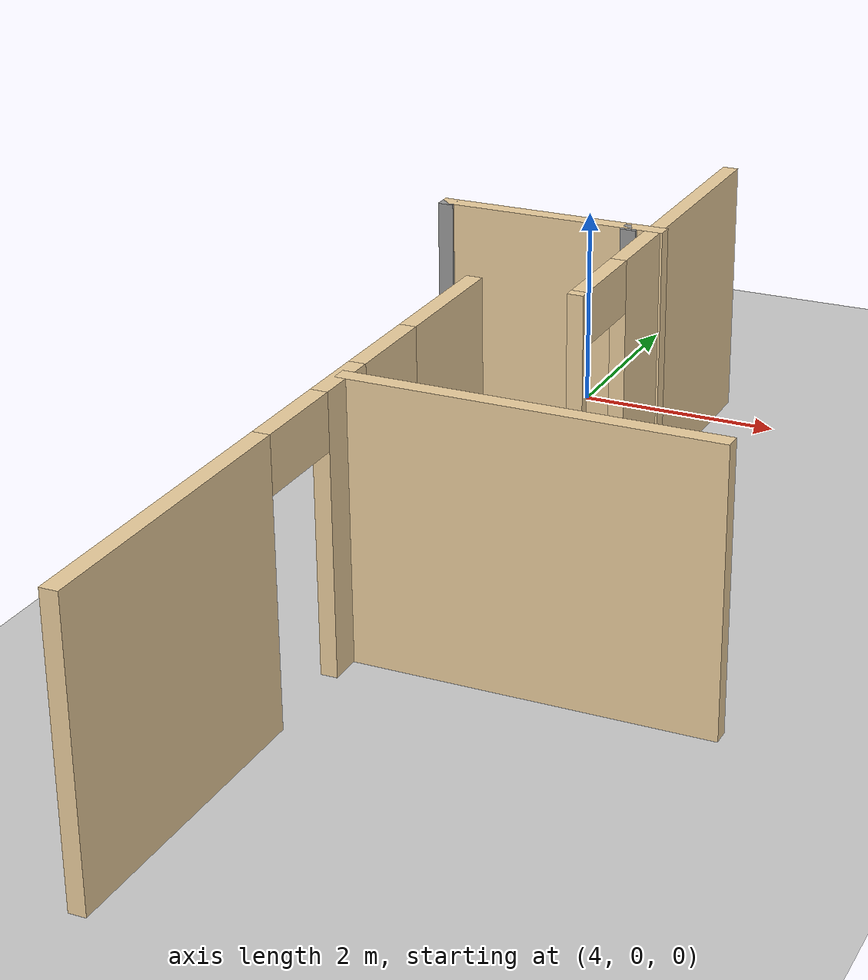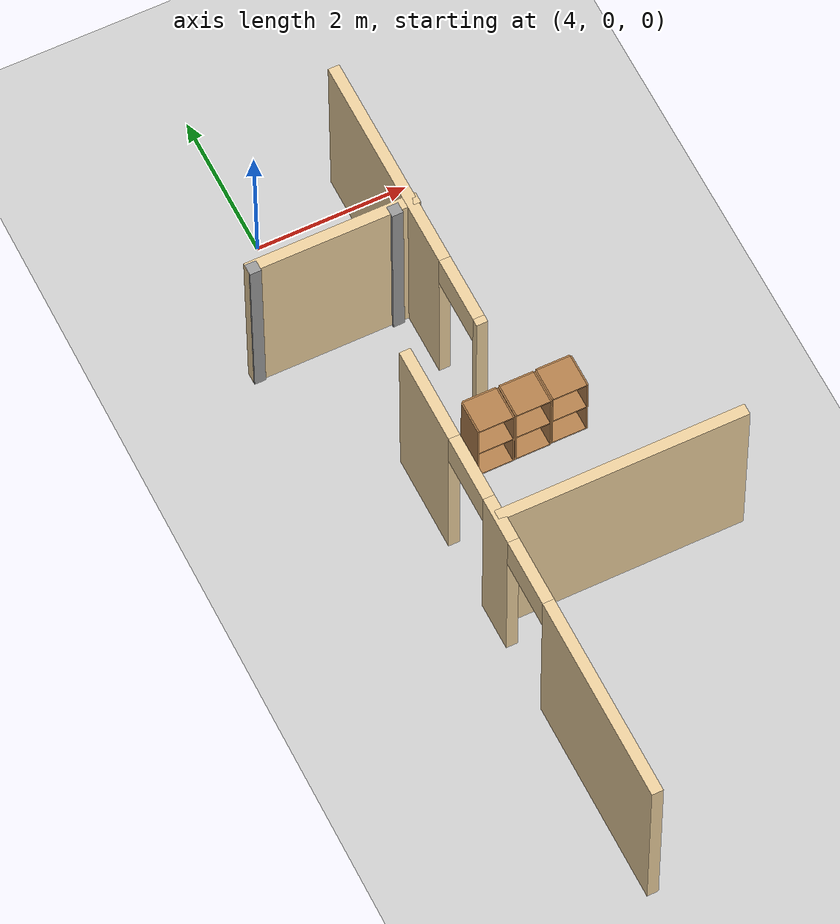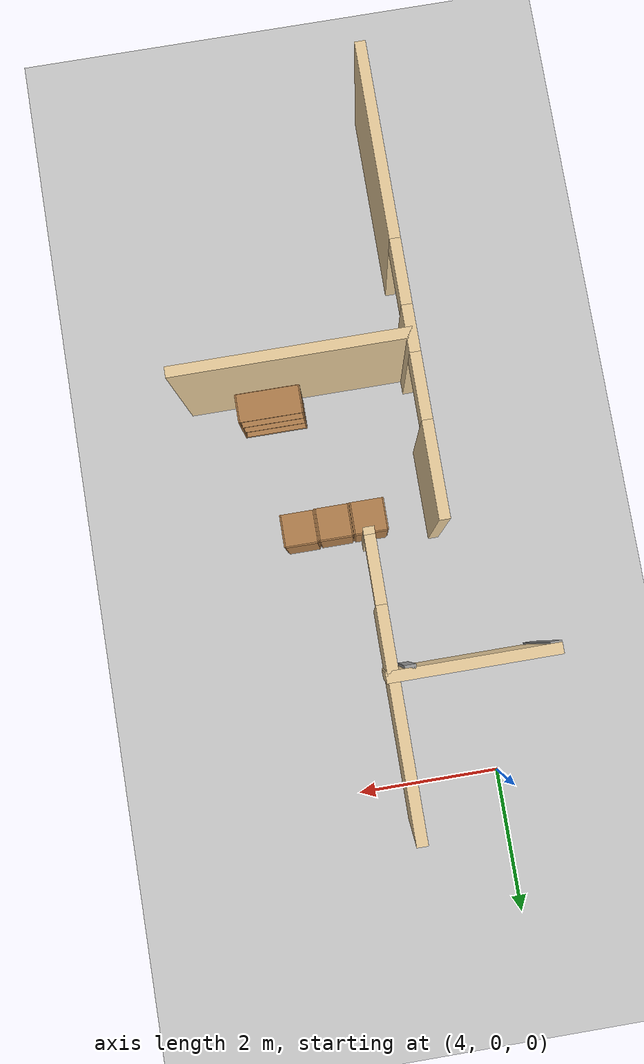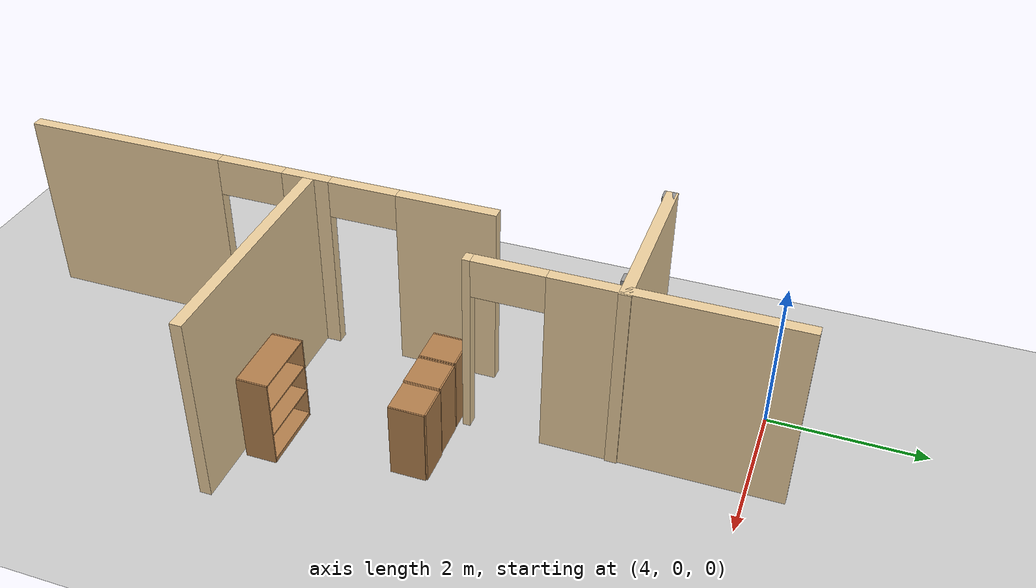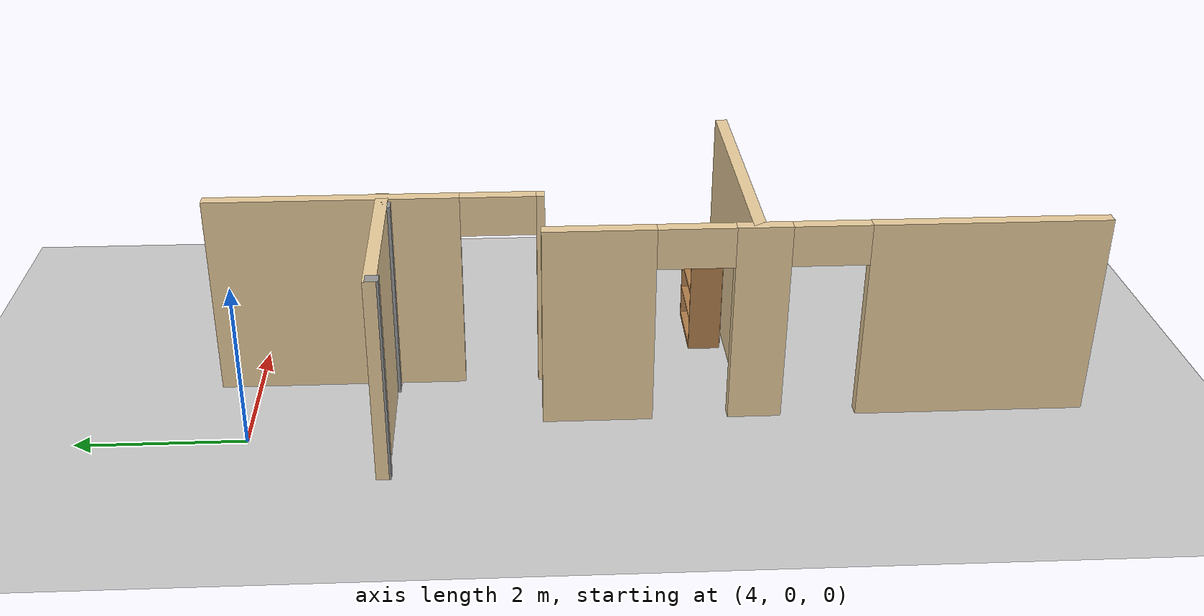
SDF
<sdf version="1.6">
 <world name="default">
  <model name="ground_plane">
   <static>1</static>
   <link name="link">
    <collision name="collision">
     <geometry><plane><normal>0 0 1</normal><size>100 100</size></plane></geometry>
     <surface>
      <contact><collide_bitmask>65535</collide_bitmask></contact>
      <friction><ode><mu>100</mu><mu2>50</mu2></ode></friction>
     </surface>
    </collision>
    <visual name="visual">
     <cast_shadows>0</cast_shadows>
     <geometry><plane><normal>0 0 1</normal><size>100 100</size></plane></geometry>
     <material>
      <script><uri>file://media/materials/scripts/gazebo.material</uri><name>Gazebo/Grey</name></script>
     </material>
    </visual>
   </link>
  </model>
  <model name="cabinet">
   <static>1</static>
   <link name="cabinet_bottom_plate">
    <inertial>
     <pose>0 0 -1 0 -0 0</pose>
     <inertia><ixx>2.05</ixx><ixy>0</ixy><ixz>0</ixz><iyy>2.05</iyy><iyz>0</iyz><izz>2.05</izz></inertia>
     <mass>25</mass>
    </inertial>
    <collision name="cabinet_bottom_plate_geom">
     <pose>0 0 0.01 0 -0 0</pose>
     <geometry><box><size>0.45 0.45 0.02</size></box></geometry>
    </collision>
    <visual name="cabinet_bottom_plate_geom_visual">
     <pose>0 0 0.01 0 -0 0</pose>
     <geometry><box><size>0.45 0.45 0.02</size></box></geometry>
     <material>
      <script><uri>file://media/materials/scripts/gazebo.material</uri><name>Gazebo/Wood</name></script>
     </material>
    </visual>
    <collision name="cabinet_bottom_plate_geom_cabinet_back_plate">
     <pose>0.235 0 0.51 0 -0 0</pose>
     <geometry><box><size>0.02 0.45 1.02</size></box></geometry>
    </collision>
    <visual name="cabinet_bottom_plate_geom_cabinet_back_plate_visual">
     <pose>0.235 0 0.51 0 -0 0</pose>
     <geometry><box><size>0.02 0.45 1.02</size></box></geometry>
     <material>
      <script><uri>file://media/materials/scripts/gazebo.material</uri><name>Gazebo/Wood</name></script>
     </material>
    </visual>
    <collision name="cabinet_bottom_plate_geom_cabinet_left_plate">
     <pose>0 0.235 0.51 0 -0 0</pose>
     <geometry><box><size>0.45 0.02 1.02</size></box></geometry>
    </collision>
    <visual name="cabinet_bottom_plate_geom_cabinet_left_plate_visual">
     <pose>0 0.235 0.51 0 -0 0</pose>
     <geometry><box><size>0.45 0.02 1.02</size></box></geometry>
     <material>
      <script><uri>file://media/materials/scripts/gazebo.material</uri><name>Gazebo/Wood</name></script>
     </material>
    </visual>
    <collision name="cabinet_bottom_plate_geom_cabinet_middle_plate">
     <pose>0 0 0.51 0 -0 0</pose>
     <geometry><box><size>0.45 0.45 0.02</size></box></geometry>
    </collision>
    <visual name="cabinet_bottom_plate_geom_cabinet_middle_plate_visual">
     <pose>0 0 0.51 0 -0 0</pose>
     <geometry><box><size>0.45 0.45 0.02</size></box></geometry>
     <material>
      <script><uri>file://media/materials/scripts/gazebo.material</uri><name>Gazebo/Wood</name></script>
     </material>
    </visual>
    <collision name="cabinet_bottom_plate_geom_cabinet_right_plate">
     <pose>0 -0.235 0.51 0 -0 0</pose>
     <geometry><box><size>0.45 0.02 1.02</size></box></geometry>
    </collision>
    <visual name="cabinet_bottom_plate_geom_cabinet_right_plate_visual">
     <pose>0 -0.235 0.51 0 -0 0</pose>
     <geometry><box><size>0.45 0.02 1.02</size></box></geometry>
     <material>
      <script><uri>file://media/materials/scripts/gazebo.material</uri><name>Gazebo/Wood</name></script>
     </material>
    </visual>
    <collision name="cabinet_bottom_plate_geom_cabinet_top_plate">
     <pose>0 0 1.01 0 -0 0</pose>
     <geometry><box><size>0.45 0.45 0.02</size></box></geometry>
    </collision>
    <visual name="cabinet_bottom_plate_geom_cabinet_top_plate_visual">
     <pose>0 0 1.01 0 -0 0</pose>
     <geometry><box><size>0.45 0.45 0.02</size></box></geometry>
     <material>
      <script><uri>file://media/materials/scripts/gazebo.material</uri><name>Gazebo/Wood</name></script>
     </material>
    </visual>
   </link>
   <pose>5.72812 -3.81623 0 0 -0 1.57</pose>
  </model>
  <model name="cabinet_clone">
   <static>1</static>
   <link name="cabinet_bottom_plate">
    <inertial>
     <pose>0 0 -1 0 -0 0</pose>
     <inertia><ixx>2.05</ixx><ixy>0</ixy><ixz>0</ixz><iyy>2.05</iyy><iyz>0</iyz><izz>2.05</izz></inertia>
     <mass>25</mass>
    </inertial>
    <collision name="cabinet_bottom_plate_geom">
     <pose>0 0 0.01 0 -0 0</pose>
     <geometry><box><size>0.45 0.45 0.02</size></box></geometry>
    </collision>
    <visual name="cabinet_bottom_plate_geom_visual">
     <pose>0 0 0.01 0 -0 0</pose>
     <geometry><box><size>0.45 0.45 0.02</size></box></geometry>
     <material>
      <script><uri>file://media/materials/scripts/gazebo.material</uri><name>Gazebo/Wood</name></script>
     </material>
    </visual>
    <collision name="cabinet_bottom_plate_geom_cabinet_back_plate">
     <pose>0.235 0 0.51 0 -0 0</pose>
     <geometry><box><size>0.02 0.45 1.02</size></box></geometry>
    </collision>
    <visual name="cabinet_bottom_plate_geom_cabinet_back_plate_visual">
     <pose>0.235 0 0.51 0 -0 0</pose>
     <geometry><box><size>0.02 0.45 1.02</size></box></geometry>
     <material>
      <script><uri>file://media/materials/scripts/gazebo.material</uri><name>Gazebo/Wood</name></script>
     </material>
    </visual>
    <collision name="cabinet_bottom_plate_geom_cabinet_left_plate">
     <pose>0 0.235 0.51 0 -0 0</pose>
     <geometry><box><size>0.45 0.02 1.02</size></box></geometry>
    </collision>
    <visual name="cabinet_bottom_plate_geom_cabinet_left_plate_visual">
     <pose>0 0.235 0.51 0 -0 0</pose>
     <geometry><box><size>0.45 0.02 1.02</size></box></geometry>
     <material>
      <script><uri>file://media/materials/scripts/gazebo.material</uri><name>Gazebo/Wood</name></script>
     </material>
    </visual>
    <collision name="cabinet_bottom_plate_geom_cabinet_middle_plate">
     <pose>0 0 0.51 0 -0 0</pose>
     <geometry><box><size>0.45 0.45 0.02</size></box></geometry>
    </collision>
    <visual name="cabinet_bottom_plate_geom_cabinet_middle_plate_visual">
     <pose>0 0 0.51 0 -0 0</pose>
     <geometry><box><size>0.45 0.45 0.02</size></box></geometry>
     <material>
      <script><uri>file://media/materials/scripts/gazebo.material</uri><name>Gazebo/Wood</name></script>
     </material>
    </visual>
    <collision name="cabinet_bottom_plate_geom_cabinet_right_plate">
     <pose>0 -0.235 0.51 0 -0 0</pose>
     <geometry><box><size>0.45 0.02 1.02</size></box></geometry>
    </collision>
    <visual name="cabinet_bottom_plate_geom_cabinet_right_plate_visual">
     <pose>0 -0.235 0.51 0 -0 0</pose>
     <geometry><box><size>0.45 0.02 1.02</size></box></geometry>
     <material>
      <script><uri>file://media/materials/scripts/gazebo.material</uri><name>Gazebo/Wood</name></script>
     </material>
    </visual>
    <collision name="cabinet_bottom_plate_geom_cabinet_top_plate">
     <pose>0 0 1.01 0 -0 0</pose>
     <geometry><box><size>0.45 0.45 0.02</size></box></geometry>
    </collision>
    <visual name="cabinet_bottom_plate_geom_cabinet_top_plate_visual">
     <pose>0 0 1.01 0 -0 0</pose>
     <geometry><box><size>0.45 0.45 0.02</size></box></geometry>
     <material>
      <script><uri>file://media/materials/scripts/gazebo.material</uri><name>Gazebo/Wood</name></script>
     </material>
    </visual>
   </link>
   <pose>6.21795 -3.80591 0 0 -0 1.57</pose>
  </model>
  <model name="cabinet_clone_0">
   <static>1</static>
   <link name="cabinet_bottom_plate">
    <inertial>
     <pose>0 0 -1 0 -0 0</pose>
     <inertia><ixx>2.05</ixx><ixy>0</ixy><ixz>0</ixz><iyy>2.05</iyy><iyz>0</iyz><izz>2.05</izz></inertia>
     <mass>25</mass>
    </inertial>
    <collision name="cabinet_bottom_plate_geom">
     <pose>0 0 0.01 0 -0 0</pose>
     <geometry><box><size>0.45 0.45 0.02</size></box></geometry>
    </collision>
    <visual name="cabinet_bottom_plate_geom_visual">
     <pose>0 0 0.01 0 -0 0</pose>
     <geometry><box><size>0.45 0.45 0.02</size></box></geometry>
     <material>
      <script><uri>file://media/materials/scripts/gazebo.material</uri><name>Gazebo/Wood</name></script>
     </material>
    </visual>
    <collision name="cabinet_bottom_plate_geom_cabinet_back_plate">
     <pose>0.235 0 0.51 0 -0 0</pose>
     <geometry><box><size>0.02 0.45 1.02</size></box></geometry>
    </collision>
    <visual name="cabinet_bottom_plate_geom_cabinet_back_plate_visual">
     <pose>0.235 0 0.51 0 -0 0</pose>
     <geometry><box><size>0.02 0.45 1.02</size></box></geometry>
     <material>
      <script><uri>file://media/materials/scripts/gazebo.material</uri><name>Gazebo/Wood</name></script>
     </material>
    </visual>
    <collision name="cabinet_bottom_plate_geom_cabinet_left_plate">
     <pose>0 0.235 0.51 0 -0 0</pose>
     <geometry><box><size>0.45 0.02 1.02</size></box></geometry>
    </collision>
    <visual name="cabinet_bottom_plate_geom_cabinet_left_plate_visual">
     <pose>0 0.235 0.51 0 -0 0</pose>
     <geometry><box><size>0.45 0.02 1.02</size></box></geometry>
     <material>
      <script><uri>file://media/materials/scripts/gazebo.material</uri><name>Gazebo/Wood</name></script>
     </material>
    </visual>
    <collision name="cabinet_bottom_plate_geom_cabinet_middle_plate">
     <pose>0 0 0.51 0 -0 0</pose>
     <geometry><box><size>0.45 0.45 0.02</size></box></geometry>
    </collision>
    <visual name="cabinet_bottom_plate_geom_cabinet_middle_plate_visual">
     <pose>0 0 0.51 0 -0 0</pose>
     <geometry><box><size>0.45 0.45 0.02</size></box></geometry>
     <material>
      <script><uri>file://media/materials/scripts/gazebo.material</uri><name>Gazebo/Wood</name></script>
     </material>
    </visual>
    <collision name="cabinet_bottom_plate_geom_cabinet_right_plate">
     <pose>0 -0.235 0.51 0 -0 0</pose>
     <geometry><box><size>0.45 0.02 1.02</size></box></geometry>
    </collision>
    <visual name="cabinet_bottom_plate_geom_cabinet_right_plate_visual">
     <pose>0 -0.235 0.51 0 -0 0</pose>
     <geometry><box><size>0.45 0.02 1.02</size></box></geometry>
     <material>
      <script><uri>file://media/materials/scripts/gazebo.material</uri><name>Gazebo/Wood</name></script>
     </material>
    </visual>
    <collision name="cabinet_bottom_plate_geom_cabinet_top_plate">
     <pose>0 0 1.01 0 -0 0</pose>
     <geometry><box><size>0.45 0.45 0.02</size></box></geometry>
    </collision>
    <visual name="cabinet_bottom_plate_geom_cabinet_top_plate_visual">
     <pose>0 0 1.01 0 -0 0</pose>
     <geometry><box><size>0.45 0.45 0.02</size></box></geometry>
     <material>
      <script><uri>file://media/materials/scripts/gazebo.material</uri><name>Gazebo/Wood</name></script>
     </material>
    </visual>
   </link>
   <pose>5.23276 -3.82024 0 0 -0 1.57</pose>
  </model>
  <model name="bookshelf">
   <static>1</static>
   <link name="link">
    <inertial><mass>1</mass></inertial>
    <collision name="back">
     <pose>0 0.005 0.6 0 -0 0</pose>
     <geometry><box><size>0.9 0.01 1.2</size></box></geometry>
    </collision>
    <visual name="visual1">
     <pose>0 0.005 0.6 0 -0 0</pose>
     <geometry><box><size>0.9 0.01 1.2</size></box></geometry>
     <material>
      <script><uri>file://media/materials/scripts/gazebo.material</uri><name>Gazebo/Wood</name></script>
     </material>
    </visual>
    <collision name="left_side">
     <pose>0.45 -0.195 0.6 0 -0 0</pose>
     <geometry><box><size>0.02 0.4 1.2</size></box></geometry>
    </collision>
    <visual name="visual2">
     <pose>0.45 -0.195 0.6 0 -0 0</pose>
     <geometry><box><size>0.02 0.4 1.2</size></box></geometry>
     <material>
      <script><uri>file://media/materials/scripts/gazebo.material</uri><name>Gazebo/Wood</name></script>
     </material>
    </visual>
    <collision name="right_side">
     <pose>-0.45 -0.195 0.6 0 -0 0</pose>
     <geometry><box><size>0.02 0.4 1.2</size></box></geometry>
    </collision>
    <visual name="visual3">
     <pose>-0.45 -0.195 0.6 0 -0 0</pose>
     <geometry><box><size>0.02 0.4 1.2</size></box></geometry>
     <material>
      <script><uri>file://media/materials/scripts/gazebo.material</uri><name>Gazebo/Wood</name></script>
     </material>
    </visual>
    <collision name="bottom">
     <pose>0 -0.195 0.03 0 -0 0</pose>
     <geometry><box><size>0.88 0.4 0.06</size></box></geometry>
    </collision>
    <visual name="visual4">
     <pose>0 -0.195 0.03 0 -0 0</pose>
     <geometry><box><size>0.88 0.4 0.06</size></box></geometry>
     <material>
      <script><uri>file://media/materials/scripts/gazebo.material</uri><name>Gazebo/Wood</name></script>
     </material>
    </visual>
    <collision name="top">
     <pose>0 -0.195 1.19 0 -0 0</pose>
     <geometry><box><size>0.88 0.4 0.02</size></box></geometry>
    </collision>
    <visual name="visual5">
     <pose>0 -0.195 1.19 0 -0 0</pose>
     <geometry><box><size>0.88 0.4 0.02</size></box></geometry>
     <material>
      <script><uri>file://media/materials/scripts/gazebo.material</uri><name>Gazebo/Wood</name></script>
     </material>
    </visual>
    <collision name="low_shelf">
     <pose>0 -0.195 0.43 0 -0 0</pose>
     <geometry><box><size>0.88 0.4 0.02</size></box></geometry>
    </collision>
    <visual name="visual6">
     <pose>0 -0.195 0.43 0 -0 0</pose>
     <geometry><box><size>0.88 0.4 0.02</size></box></geometry>
     <material>
      <script><uri>file://media/materials/scripts/gazebo.material</uri><name>Gazebo/Wood</name></script>
     </material>
    </visual>
    <collision name="high_shelf">
     <pose>0 -0.195 0.8 0 -0 0</pose>
     <geometry><box><size>0.88 0.4 0.02</size></box></geometry>
    </collision>
    <visual name="visual7">
     <pose>0 -0.195 0.8 0 -0 0</pose>
     <geometry><box><size>0.88 0.4 0.02</size></box></geometry>
     <material>
      <script><uri>file://media/materials/scripts/gazebo.material</uri><name>Gazebo/Wood</name></script>
     </material>
    </visual>
   </link>
   <pose>6.34803 -5.77495 0 0 -0 3.14</pose>
  </model>
  <model name="AutowayTower">
   <link name="Wall_20">
    <pose>1.52688 5.29695 0 0 -0 0</pose>
    <visual name="Wall_20_Visual_0">
     <pose>-0.499329 0 1.25 0 -0 0</pose>
     <geometry><box><size>3.00134 0.15 2.5</size></box></geometry>
     <material>
      <script><uri>file://media/materials/scripts/gazebo.material</uri><name>Gazebo/Grey</name></script>
      <ambient>0.921569 0.807843 0.615686 1</ambient>
      <shader type="pixel"/>
      <diffuse>0.7 0.7 0.7 1</diffuse>
      <specular>0.01 0.01 0.01 1</specular>
      <emissive>0 0 0 1</emissive>
     </material>
     <meta><layer>0</layer></meta>
    </visual>
    <visual name="Wall_20_Visual_1">
     <pose>1.95067 0 1.25 0 -0 0</pose>
     <geometry><box><size>0.098657 0.15 2.5</size></box></geometry>
     <material>
      <script><uri>file://media/materials/scripts/gazebo.material</uri><name>Gazebo/Grey</name></script>
      <ambient>0.921569 0.807843 0.615686 1</ambient>
      <shader type="pixel"/>
      <diffuse>0.7 0.7 0.7 1</diffuse>
      <specular>0.01 0.01 0.01 1</specular>
      <emissive>0 0 0 1</emissive>
     </material>
     <meta><layer>0</layer></meta>
    </visual>
    <visual name="Wall_20_Visual_2">
     <pose>1.45134 0 2.25 0 -0 0</pose>
     <geometry><box><size>0.9 0.15 0.5</size></box></geometry>
     <material>
      <script><uri>file://media/materials/scripts/gazebo.material</uri><name>Gazebo/Grey</name></script>
      <ambient>0.921569 0.807843 0.615686 1</ambient>
      <shader type="pixel"/>
      <diffuse>0.7 0.7 0.7 1</diffuse>
      <specular>0.01 0.01 0.01 1</specular>
      <emissive>0 0 0 1</emissive>
     </material>
     <meta><layer>0</layer></meta>
    </visual>
    <collision name="Wall_20_Collision_0">
     <pose>-0.499329 0 1.25 0 -0 0</pose>
     <geometry><box><size>3.00134 0.15 2.5</size></box></geometry>
     <surface>
      <friction>
       <ode><mu>1</mu><mu2>1</mu2><fdir1>0 0 0</fdir1><slip1>0</slip1><slip2>0</slip2></ode>
       <torsional>
        <coefficient>1</coefficient>
        <patch_radius>0</patch_radius>
        <surface_radius>0</surface_radius>
        <use_patch_radius>1</use_patch_radius>
        <ode><slip>0</slip></ode>
       </torsional>
      </friction>
      <bounce><restitution_coefficient>0</restitution_coefficient><threshold>1e+06</threshold></bounce>
      <contact>
       <collide_without_contact>0</collide_without_contact>
       <collide_without_contact_bitmask>1</collide_without_contact_bitmask>
       <collide_bitmask>1</collide_bitmask>
       <ode>
        <soft_cfm>0</soft_cfm>
        <soft_erp>0.2</soft_erp>
        <kp>1e+13</kp>
        <kd>1</kd>
        <max_vel>0.01</max_vel>
        <min_depth>0</min_depth>
       </ode>
       <bullet>
        <split_impulse>1</split_impulse>
        <split_impulse_penetration_threshold>-0.01</split_impulse_penetration_threshold>
        <soft_cfm>0</soft_cfm>
        <soft_erp>0.2</soft_erp>
        <kp>1e+13</kp>
        <kd>1</kd>
       </bullet>
      </contact>
     </surface>
    </collision>
    <collision name="Wall_20_Collision_1">
     <pose>1.95067 0 1.25 0 -0 0</pose>
     <geometry><box><size>0.098657 0.15 2.5</size></box></geometry>
     <surface>
      <friction>
       <ode><mu>1</mu><mu2>1</mu2><fdir1>0 0 0</fdir1><slip1>0</slip1><slip2>0</slip2></ode>
       <torsional>
        <coefficient>1</coefficient>
        <patch_radius>0</patch_radius>
        <surface_radius>0</surface_radius>
        <use_patch_radius>1</use_patch_radius>
        <ode><slip>0</slip></ode>
       </torsional>
      </friction>
      <bounce><restitution_coefficient>0</restitution_coefficient><threshold>1e+06</threshold></bounce>
      <contact>
       <collide_without_contact>0</collide_without_contact>
       <collide_without_contact_bitmask>1</collide_without_contact_bitmask>
       <collide_bitmask>1</collide_bitmask>
       <ode>
        <soft_cfm>0</soft_cfm>
        <soft_erp>0.2</soft_erp>
        <kp>1e+13</kp>
        <kd>1</kd>
        <max_vel>0.01</max_vel>
        <min_depth>0</min_depth>
       </ode>
       <bullet>
        <split_impulse>1</split_impulse>
        <split_impulse_penetration_threshold>-0.01</split_impulse_penetration_threshold>
        <soft_cfm>0</soft_cfm>
        <soft_erp>0.2</soft_erp>
        <kp>1e+13</kp>
        <kd>1</kd>
       </bullet>
      </contact>
     </surface>
    </collision>
    <collision name="Wall_20_Collision_2">
     <pose>1.45134 0 2.25 0 -0 0</pose>
     <geometry><box><size>0.9 0.15 0.5</size></box></geometry>
     <surface>
      <friction>
       <ode><mu>1</mu><mu2>1</mu2><fdir1>0 0 0</fdir1><slip1>0</slip1><slip2>0</slip2></ode>
       <torsional>
        <coefficient>1</coefficient>
        <patch_radius>0</patch_radius>
        <surface_radius>0</surface_radius>
        <use_patch_radius>1</use_patch_radius>
        <ode><slip>0</slip></ode>
       </torsional>
      </friction>
      <bounce><restitution_coefficient>0</restitution_coefficient><threshold>1e+06</threshold></bounce>
      <contact>
       <collide_without_contact>0</collide_without_contact>
       <collide_without_contact_bitmask>1</collide_without_contact_bitmask>
       <collide_bitmask>1</collide_bitmask>
       <ode>
        <soft_cfm>0</soft_cfm>
        <soft_erp>0.2</soft_erp>
        <kp>1e+13</kp>
        <kd>1</kd>
        <max_vel>0.01</max_vel>
        <min_depth>0</min_depth>
       </ode>
       <bullet>
        <split_impulse>1</split_impulse>
        <split_impulse_penetration_threshold>-0.01</split_impulse_penetration_threshold>
        <soft_cfm>0</soft_cfm>
        <soft_erp>0.2</soft_erp>
        <kp>1e+13</kp>
        <kd>1</kd>
       </bullet>
      </contact>
     </surface>
    </collision>
   </link>
   <link name="Wall_48">
    <pose>1.64681 3.22085 0 0 -0 0</pose>
    <visual name="Wall_48_Visual">
     <pose>0 0 1.25 0 -0 0</pose>
     <geometry><box><size>0.15 0.15 2.5</size></box></geometry>
     <material>
      <script><uri>file://media/materials/scripts/gazebo.material</uri><name>Gazebo/Grey</name></script>
      <ambient>1 1 1 1</ambient>
      <shader type="pixel"/>
      <diffuse>0.7 0.7 0.7 1</diffuse>
      <specular>0.01 0.01 0.01 1</specular>
      <emissive>0 0 0 1</emissive>
     </material>
     <meta><layer>0</layer></meta>
    </visual>
    <collision name="Wall_48_Collision">
     <pose>0 0 1.25 0 -0 0</pose>
     <geometry><box><size>0.15 0.15 2.5</size></box></geometry>
     <surface>
      <friction>
       <ode><mu>1</mu><mu2>1</mu2><fdir1>0 0 0</fdir1><slip1>0</slip1><slip2>0</slip2></ode>
       <torsional>
        <coefficient>1</coefficient>
        <patch_radius>0</patch_radius>
        <surface_radius>0</surface_radius>
        <use_patch_radius>1</use_patch_radius>
        <ode><slip>0</slip></ode>
       </torsional>
      </friction>
      <bounce><restitution_coefficient>0</restitution_coefficient><threshold>1e+06</threshold></bounce>
      <contact>
       <collide_without_contact>0</collide_without_contact>
       <collide_without_contact_bitmask>1</collide_without_contact_bitmask>
       <collide_bitmask>1</collide_bitmask>
       <ode>
        <soft_cfm>0</soft_cfm>
        <soft_erp>0.2</soft_erp>
        <kp>1e+13</kp>
        <kd>1</kd>
        <max_vel>0.01</max_vel>
        <min_depth>0</min_depth>
       </ode>
       <bullet>
        <split_impulse>1</split_impulse>
        <split_impulse_penetration_threshold>-0.01</split_impulse_penetration_threshold>
        <soft_cfm>0</soft_cfm>
        <soft_erp>0.2</soft_erp>
        <kp>1e+13</kp>
        <kd>1</kd>
       </bullet>
      </contact>
     </surface>
    </collision>
   </link>
   <link name="Wall_51">
    <pose>1.66003 5.07085 0 0 -0 0</pose>
    <visual name="Wall_51_Visual">
     <pose>0 0 1.25 0 -0 0</pose>
     <geometry><box><size>0.15 0.15 2.5</size></box></geometry>
     <material>
      <script><uri>file://media/materials/scripts/gazebo.material</uri><name>Gazebo/Grey</name></script>
      <ambient>1 1 1 1</ambient>
      <shader type="pixel"/>
      <diffuse>0.7 0.7 0.7 1</diffuse>
      <specular>0.01 0.01 0.01 1</specular>
      <emissive>0 0 0 1</emissive>
     </material>
     <meta><layer>0</layer></meta>
    </visual>
    <collision name="Wall_51_Collision">
     <pose>0 0 1.25 0 -0 0</pose>
     <geometry><box><size>0.15 0.15 2.5</size></box></geometry>
     <surface>
      <friction>
       <ode><mu>1</mu><mu2>1</mu2><fdir1>0 0 0</fdir1><slip1>0</slip1><slip2>0</slip2></ode>
       <torsional>
        <coefficient>1</coefficient>
        <patch_radius>0</patch_radius>
        <surface_radius>0</surface_radius>
        <use_patch_radius>1</use_patch_radius>
        <ode><slip>0</slip></ode>
       </torsional>
      </friction>
      <bounce><restitution_coefficient>0</restitution_coefficient><threshold>1e+06</threshold></bounce>
      <contact>
       <collide_without_contact>0</collide_without_contact>
       <collide_without_contact_bitmask>1</collide_without_contact_bitmask>
       <collide_bitmask>1</collide_bitmask>
       <ode>
        <soft_cfm>0</soft_cfm>
        <soft_erp>0.2</soft_erp>
        <kp>1e+13</kp>
        <kd>1</kd>
        <max_vel>0.01</max_vel>
        <min_depth>0</min_depth>
       </ode>
       <bullet>
        <split_impulse>1</split_impulse>
        <split_impulse_penetration_threshold>-0.01</split_impulse_penetration_threshold>
        <soft_cfm>0</soft_cfm>
        <soft_erp>0.2</soft_erp>
        <kp>1e+13</kp>
        <kd>1</kd>
       </bullet>
      </contact>
     </surface>
    </collision>
   </link>
   <link name="Wall_54">
    <pose>1.62229 4.26927 0 0 0 -1.5708</pose>
    <visual name="Wall_54_Visual">
     <pose>0 0 1.25 0 -0 0</pose>
     <geometry><box><size>2.25 0.15 2.5</size></box></geometry>
     <material>
      <script><uri>file://media/materials/scripts/gazebo.material</uri><name>Gazebo/Grey</name></script>
      <ambient>0.921569 0.807843 0.615686 1</ambient>
      <shader type="pixel"/>
      <diffuse>0.7 0.7 0.7 1</diffuse>
      <specular>0.01 0.01 0.01 1</specular>
      <emissive>0 0 0 1</emissive>
     </material>
     <meta><layer>0</layer></meta>
    </visual>
    <collision name="Wall_54_Collision">
     <pose>0 0 1.25 0 -0 0</pose>
     <geometry><box><size>2.25 0.15 2.5</size></box></geometry>
     <surface>
      <friction>
       <ode><mu>1</mu><mu2>1</mu2><fdir1>0 0 0</fdir1><slip1>0</slip1><slip2>0</slip2></ode>
       <torsional>
        <coefficient>1</coefficient>
        <patch_radius>0</patch_radius>
        <surface_radius>0</surface_radius>
        <use_patch_radius>1</use_patch_radius>
        <ode><slip>0</slip></ode>
       </torsional>
      </friction>
      <bounce><restitution_coefficient>0</restitution_coefficient><threshold>1e+06</threshold></bounce>
      <contact>
       <collide_without_contact>0</collide_without_contact>
       <collide_without_contact_bitmask>1</collide_without_contact_bitmask>
       <collide_bitmask>1</collide_bitmask>
       <ode>
        <soft_cfm>0</soft_cfm>
        <soft_erp>0.2</soft_erp>
        <kp>1e+13</kp>
        <kd>1</kd>
        <max_vel>0.01</max_vel>
        <min_depth>0</min_depth>
       </ode>
       <bullet>
        <split_impulse>1</split_impulse>
        <split_impulse_penetration_threshold>-0.01</split_impulse_penetration_threshold>
        <soft_cfm>0</soft_cfm>
        <soft_erp>0.2</soft_erp>
        <kp>1e+13</kp>
        <kd>1</kd>
       </bullet>
      </contact>
     </surface>
    </collision>
   </link>
   <link name="Wall_70">
    <pose>6.70521 4.32217 0 0 -0 0</pose>
    <visual name="Wall_70_Visual_0">
     <pose>-2.59798 0 1.25 0 -0 0</pose>
     <geometry><box><size>1.30405 0.15 2.5</size></box></geometry>
     <material>
      <script><uri>file://media/materials/scripts/gazebo.material</uri><name>Gazebo/Grey</name></script>
      <ambient>0.921569 0.807843 0.615686 1</ambient>
      <shader type="pixel"/>
      <diffuse>0.7 0.7 0.7 1</diffuse>
      <specular>0.01 0.01 0.01 1</specular>
      <emissive>0 0 0 1</emissive>
     </material>
     <meta><layer>0</layer></meta>
    </visual>
    <visual name="Wall_70_Visual_1">
     <pose>-0.726391 0 1.25 0 -0 0</pose>
     <geometry><box><size>0.639126 0.15 2.5</size></box></geometry>
     <material>
      <script><uri>file://media/materials/scripts/gazebo.material</uri><name>Gazebo/Grey</name></script>
      <ambient>0.921569 0.807843 0.615686 1</ambient>
      <shader type="pixel"/>
      <diffuse>0.7 0.7 0.7 1</diffuse>
      <specular>0.01 0.01 0.01 1</specular>
      <emissive>0 0 0 1</emissive>
     </material>
     <meta><layer>0</layer></meta>
    </visual>
    <visual name="Wall_70_Visual_2">
     <pose>1.87159 0 1.25 0 -0 0</pose>
     <geometry><box><size>2.75683 0.15 2.5</size></box></geometry>
     <material>
      <script><uri>file://media/materials/scripts/gazebo.material</uri><name>Gazebo/Grey</name></script>
      <ambient>0.921569 0.807843 0.615686 1</ambient>
      <shader type="pixel"/>
      <diffuse>0.7 0.7 0.7 1</diffuse>
      <specular>0.01 0.01 0.01 1</specular>
      <emissive>0 0 0 1</emissive>
     </material>
     <meta><layer>0</layer></meta>
    </visual>
    <visual name="Wall_70_Visual_3">
     <pose>-1.49595 0 2.25 0 -0 0</pose>
     <geometry><box><size>0.9 0.15 0.5</size></box></geometry>
     <material>
      <script><uri>file://media/materials/scripts/gazebo.material</uri><name>Gazebo/Grey</name></script>
      <ambient>0.921569 0.807843 0.615686 1</ambient>
      <shader type="pixel"/>
      <diffuse>0.7 0.7 0.7 1</diffuse>
      <specular>0.01 0.01 0.01 1</specular>
      <emissive>0 0 0 1</emissive>
     </material>
     <meta><layer>0</layer></meta>
    </visual>
    <visual name="Wall_70_Visual_4">
     <pose>0.043172 0 2.25 0 -0 0</pose>
     <geometry><box><size>0.9 0.15 0.5</size></box></geometry>
     <material>
      <script><uri>file://media/materials/scripts/gazebo.material</uri><name>Gazebo/Grey</name></script>
      <ambient>0.921569 0.807843 0.615686 1</ambient>
      <shader type="pixel"/>
      <diffuse>0.7 0.7 0.7 1</diffuse>
      <specular>0.01 0.01 0.01 1</specular>
      <emissive>0 0 0 1</emissive>
     </material>
     <meta><layer>0</layer></meta>
    </visual>
    <collision name="Wall_70_Collision_0">
     <pose>-2.59798 0 1.25 0 -0 0</pose>
     <geometry><box><size>1.30405 0.15 2.5</size></box></geometry>
     <surface>
      <friction>
       <ode><mu>1</mu><mu2>1</mu2><fdir1>0 0 0</fdir1><slip1>0</slip1><slip2>0</slip2></ode>
       <torsional>
        <coefficient>1</coefficient>
        <patch_radius>0</patch_radius>
        <surface_radius>0</surface_radius>
        <use_patch_radius>1</use_patch_radius>
        <ode><slip>0</slip></ode>
       </torsional>
      </friction>
      <bounce><restitution_coefficient>0</restitution_coefficient><threshold>1e+06</threshold></bounce>
      <contact>
       <collide_without_contact>0</collide_without_contact>
       <collide_without_contact_bitmask>1</collide_without_contact_bitmask>
       <collide_bitmask>1</collide_bitmask>
       <ode>
        <soft_cfm>0</soft_cfm>
        <soft_erp>0.2</soft_erp>
        <kp>1e+13</kp>
        <kd>1</kd>
        <max_vel>0.01</max_vel>
        <min_depth>0</min_depth>
       </ode>
       <bullet>
        <split_impulse>1</split_impulse>
        <split_impulse_penetration_threshold>-0.01</split_impulse_penetration_threshold>
        <soft_cfm>0</soft_cfm>
        <soft_erp>0.2</soft_erp>
        <kp>1e+13</kp>
        <kd>1</kd>
       </bullet>
      </contact>
     </surface>
    </collision>
    <collision name="Wall_70_Collision_1">
     <pose>-0.726391 0 1.25 0 -0 0</pose>
     <geometry><box><size>0.639126 0.15 2.5</size></box></geometry>
     <surface>
      <friction>
       <ode><mu>1</mu><mu2>1</mu2><fdir1>0 0 0</fdir1><slip1>0</slip1><slip2>0</slip2></ode>
       <torsional>
        <coefficient>1</coefficient>
        <patch_radius>0</patch_radius>
        <surface_radius>0</surface_radius>
        <use_patch_radius>1</use_patch_radius>
        <ode><slip>0</slip></ode>
       </torsional>
      </friction>
      <bounce><restitution_coefficient>0</restitution_coefficient><threshold>1e+06</threshold></bounce>
      <contact>
       <collide_without_contact>0</collide_without_contact>
       <collide_without_contact_bitmask>1</collide_without_contact_bitmask>
       <collide_bitmask>1</collide_bitmask>
       <ode>
        <soft_cfm>0</soft_cfm>
        <soft_erp>0.2</soft_erp>
        <kp>1e+13</kp>
        <kd>1</kd>
        <max_vel>0.01</max_vel>
        <min_depth>0</min_depth>
       </ode>
       <bullet>
        <split_impulse>1</split_impulse>
        <split_impulse_penetration_threshold>-0.01</split_impulse_penetration_threshold>
        <soft_cfm>0</soft_cfm>
        <soft_erp>0.2</soft_erp>
        <kp>1e+13</kp>
        <kd>1</kd>
       </bullet>
      </contact>
     </surface>
    </collision>
    <collision name="Wall_70_Collision_3">
     <pose>-1.49595 0 2.25 0 -0 0</pose>
     <geometry><box><size>0.9 0.15 0.5</size></box></geometry>
     <surface>
      <friction>
       <ode><mu>1</mu><mu2>1</mu2><fdir1>0 0 0</fdir1><slip1>0</slip1><slip2>0</slip2></ode>
       <torsional>
        <coefficient>1</coefficient>
        <patch_radius>0</patch_radius>
        <surface_radius>0</surface_radius>
        <use_patch_radius>1</use_patch_radius>
        <ode><slip>0</slip></ode>
       </torsional>
      </friction>
      <bounce><restitution_coefficient>0</restitution_coefficient><threshold>1e+06</threshold></bounce>
      <contact>
       <collide_without_contact>0</collide_without_contact>
       <collide_without_contact_bitmask>1</collide_without_contact_bitmask>
       <collide_bitmask>1</collide_bitmask>
       <ode>
        <soft_cfm>0</soft_cfm>
        <soft_erp>0.2</soft_erp>
        <kp>1e+13</kp>
        <kd>1</kd>
        <max_vel>0.01</max_vel>
        <min_depth>0</min_depth>
       </ode>
       <bullet>
        <split_impulse>1</split_impulse>
        <split_impulse_penetration_threshold>-0.01</split_impulse_penetration_threshold>
        <soft_cfm>0</soft_cfm>
        <soft_erp>0.2</soft_erp>
        <kp>1e+13</kp>
        <kd>1</kd>
       </bullet>
      </contact>
     </surface>
    </collision>
    <collision name="Wall_70_Collision_2">
     <pose>1.87159 0 1.25 0 -0 0</pose>
     <geometry><box><size>2.75683 0.15 2.5</size></box></geometry>
     <surface>
      <friction>
       <ode><mu>1</mu><mu2>1</mu2><fdir1>0 0 0</fdir1><slip1>0</slip1><slip2>0</slip2></ode>
       <torsional>
        <coefficient>1</coefficient>
        <patch_radius>0</patch_radius>
        <surface_radius>0</surface_radius>
        <use_patch_radius>1</use_patch_radius>
        <ode><slip>0</slip></ode>
       </torsional>
      </friction>
      <bounce><restitution_coefficient>0</restitution_coefficient><threshold>1e+06</threshold></bounce>
      <contact>
       <collide_without_contact>0</collide_without_contact>
       <collide_without_contact_bitmask>1</collide_without_contact_bitmask>
       <collide_bitmask>1</collide_bitmask>
       <ode>
        <soft_cfm>0</soft_cfm>
        <soft_erp>0.2</soft_erp>
        <kp>1e+13</kp>
        <kd>1</kd>
        <max_vel>0.01</max_vel>
        <min_depth>0</min_depth>
       </ode>
       <bullet>
        <split_impulse>1</split_impulse>
        <split_impulse_penetration_threshold>-0.01</split_impulse_penetration_threshold>
        <soft_cfm>0</soft_cfm>
        <soft_erp>0.2</soft_erp>
        <kp>1e+13</kp>
        <kd>1</kd>
       </bullet>
      </contact>
     </surface>
    </collision>
    <collision name="Wall_70_Collision_4">
     <pose>0.043172 0 2.25 0 -0 0</pose>
     <geometry><box><size>0.9 0.15 0.5</size></box></geometry>
     <surface>
      <friction>
       <ode><mu>1</mu><mu2>1</mu2><fdir1>0 0 0</fdir1><slip1>0</slip1><slip2>0</slip2></ode>
       <torsional>
        <coefficient>1</coefficient>
        <patch_radius>0</patch_radius>
        <surface_radius>0</surface_radius>
        <use_patch_radius>1</use_patch_radius>
        <ode><slip>0</slip></ode>
       </torsional>
      </friction>
      <bounce><restitution_coefficient>0</restitution_coefficient><threshold>1e+06</threshold></bounce>
      <contact>
       <collide_without_contact>0</collide_without_contact>
       <collide_without_contact_bitmask>1</collide_without_contact_bitmask>
       <collide_bitmask>1</collide_bitmask>
       <ode>
        <soft_cfm>0</soft_cfm>
        <soft_erp>0.2</soft_erp>
        <kp>1e+13</kp>
        <kd>1</kd>
        <max_vel>0.01</max_vel>
        <min_depth>0</min_depth>
       </ode>
       <bullet>
        <split_impulse>1</split_impulse>
        <split_impulse_penetration_threshold>-0.01</split_impulse_penetration_threshold>
        <soft_cfm>0</soft_cfm>
        <soft_erp>0.2</soft_erp>
        <kp>1e+13</kp>
        <kd>1</kd>
       </bullet>
      </contact>
     </surface>
    </collision>
   </link>
   <link name="Wall_77">
    <pose>5.92635 5.92039 0 0 0 -1.5708</pose>
    <visual name="Wall_77_Visual">
     <pose>0 0 1.25 0 -0 0</pose>
     <geometry><box><size>3.25 0.15 2.5</size></box></geometry>
     <material>
      <script><uri>file://media/materials/scripts/gazebo.material</uri><name>Gazebo/Grey</name></script>
      <ambient>0.921569 0.807843 0.615686 1</ambient>
      <shader type="pixel"/>
      <diffuse>0.7 0.7 0.7 1</diffuse>
      <specular>0.01 0.01 0.01 1</specular>
      <emissive>0 0 0 1</emissive>
     </material>
     <meta><layer>0</layer></meta>
    </visual>
    <collision name="Wall_77_Collision">
     <pose>0 0 1.25 0 -0 0</pose>
     <geometry><box><size>3.25 0.15 2.5</size></box></geometry>
     <surface>
      <friction>
       <ode><mu>1</mu><mu2>1</mu2><fdir1>0 0 0</fdir1><slip1>0</slip1><slip2>0</slip2></ode>
       <torsional>
        <coefficient>1</coefficient>
        <patch_radius>0</patch_radius>
        <surface_radius>0</surface_radius>
        <use_patch_radius>1</use_patch_radius>
        <ode><slip>0</slip></ode>
       </torsional>
      </friction>
      <bounce><restitution_coefficient>0</restitution_coefficient><threshold>1e+06</threshold></bounce>
      <contact>
       <collide_without_contact>0</collide_without_contact>
       <collide_without_contact_bitmask>1</collide_without_contact_bitmask>
       <collide_bitmask>1</collide_bitmask>
       <ode>
        <soft_cfm>0</soft_cfm>
        <soft_erp>0.2</soft_erp>
        <kp>1e+13</kp>
        <kd>1</kd>
        <max_vel>0.01</max_vel>
        <min_depth>0</min_depth>
       </ode>
       <bullet>
        <split_impulse>1</split_impulse>
        <split_impulse_penetration_threshold>-0.01</split_impulse_penetration_threshold>
        <soft_cfm>0</soft_cfm>
        <soft_erp>0.2</soft_erp>
        <kp>1e+13</kp>
        <kd>1</kd>
       </bullet>
      </contact>
     </surface>
    </collision>
   </link>
   <static>1</static>
   <pose>3e-06 0 0 0 0 -1.57</pose>
  </model>
 </world>
</sdf>
